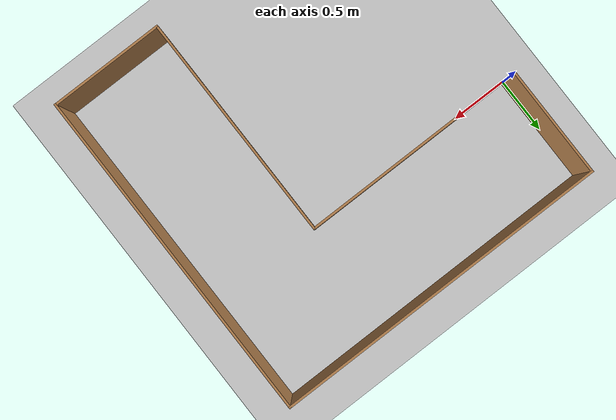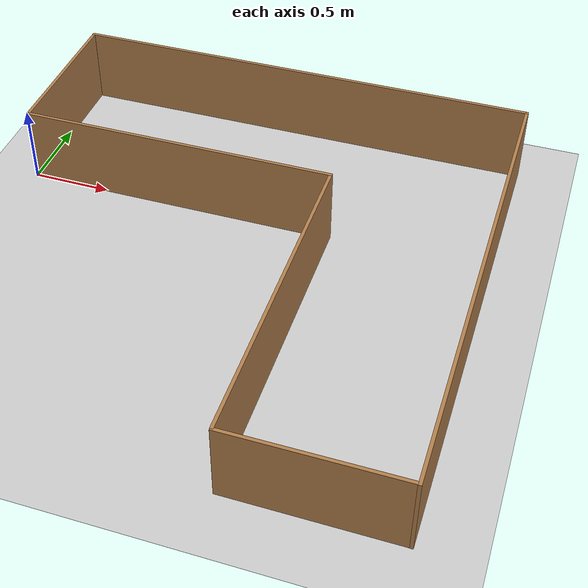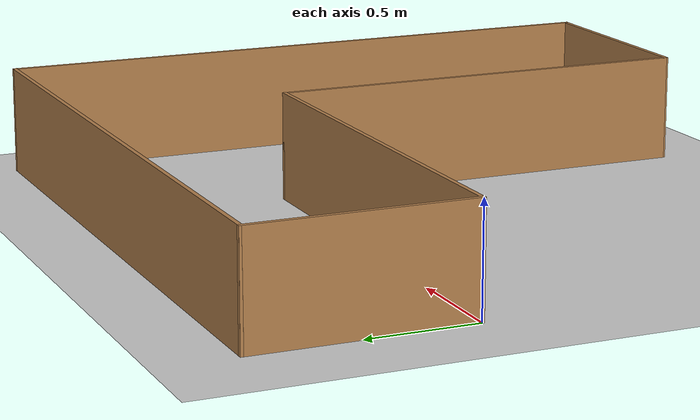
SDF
<sdf version="1.6">
 <world name="default">
  <light name="sun" type="directional">
   <pose>0 0 10 0 -0 0</pose>
   <diffuse>0.8 0.8 0.8 1</diffuse>
   <specular>0.2 0.2 0.2 1</specular>
   <attenuation>
    <range>1000</range>
    <constant>0.9</constant>
    <linear>0.01</linear>
    <quadratic>0.001</quadratic>
   </attenuation>
   <direction>-0.5 0.1 -0.9</direction>
  </light>
  <model name="ground_plane">
   <static>1</static>
   <link name="link">
    <collision name="collision">
     <geometry><plane><normal>0 0 1</normal><size>100 100</size></plane></geometry>
     <surface>
      <contact><collide_bitmask>65535</collide_bitmask></contact>
      <friction><ode><mu>100</mu><mu2>50</mu2></ode></friction>
     </surface>
    </collision>
    <visual name="visual">
     <cast_shadows>0</cast_shadows>
     <geometry><plane><normal>0 0 1</normal><size>100 100</size></plane></geometry>
     <material>
      <script><uri>file://media/materials/scripts/gazebo.material</uri><name>Gazebo/Grey</name></script>
     </material>
    </visual>
   </link>
  </model>
  <gravity>0 0 -9.8</gravity>
  <magnetic_field>6e-06 2.3e-05 -4.2e-05</magnetic_field>
  <atmosphere type="adiabatic"/>
  <physics name="default_physics" default="0" type="ode">
   <max_step_size>0.001</max_step_size>
   <real_time_factor>1</real_time_factor>
   <real_time_update_rate>1000</real_time_update_rate>
  </physics>
  <scene><ambient>0.4 0.4 0.4 1</ambient><background>0.7 0.7 0.7 1</background><shadows>1</shadows></scene>
  <audio><device>default</device></audio>
  <spherical_coordinates>
   <surface_model>EARTH_WGS84</surface_model>
   <latitude_deg>0</latitude_deg>
   <longitude_deg>0</longitude_deg>
   <elevation>0</elevation>
   <heading_deg>0</heading_deg>
  </spherical_coordinates>
  <model name="Motion3">
   <pose>1.49886 -0.508633 0 0 -0 0</pose>
   <link name="Wall_0">
    <collision name="Wall_0_Collision">
     <geometry><box><size>2 0.02 0.5</size></box></geometry>
     <pose>0 0 0.25 0 -0 0</pose>
    </collision>
    <visual name="Wall_0_Visual">
     <pose>0 0 0.25 0 -0 0</pose>
     <geometry><box><size>2 0.02 0.5</size></box></geometry>
     <material>
      <script><uri>file://media/materials/scripts/gazebo.material</uri><name>Gazebo/Wood</name></script>
      <ambient>1 1 1 1</ambient>
     </material>
     <meta><layer>0</layer></meta>
    </visual>
    <pose>-0.500064 0.510326 0 0 -0 0</pose>
   </link>
   <link name="Wall_11">
    <collision name="Wall_11_Collision">
     <geometry><box><size>2.01 0.02 0.5</size></box></geometry>
     <pose>0 0 0.25 0 -0 0</pose>
    </collision>
    <visual name="Wall_11_Visual">
     <pose>0 0 0.25 0 -0 0</pose>
     <geometry><box><size>2.01 0.02 0.5</size></box></geometry>
     <material>
      <script><uri>file://media/materials/scripts/gazebo.material</uri><name>Gazebo/Wood</name></script>
      <ambient>1 1 1 1</ambient>
     </material>
     <meta><layer>0</layer></meta>
    </visual>
    <pose>0.489936 -0.484674 0 0 -0 -1.5708</pose>
   </link>
   <link name="Wall_16">
    <collision name="Wall_16_Collision">
     <geometry><box><size>1 0.02 0.5</size></box></geometry>
     <pose>0 0 0.25 0 -0 0</pose>
    </collision>
    <visual name="Wall_16_Visual">
     <pose>0 0 0.25 0 -0 0</pose>
     <geometry><box><size>1 0.02 0.5</size></box></geometry>
     <material>
      <script><uri>file://media/materials/scripts/gazebo.material</uri><name>Gazebo/Wood</name></script>
      <ambient>1 1 1 1</ambient>
     </material>
     <meta><layer>0</layer></meta>
    </visual>
    <pose>0.981774 -1.48898 0 0 -0 0</pose>
   </link>
   <link name="Wall_2">
    <collision name="Wall_2_Collision">
     <geometry><box><size>1 0.02 0.5</size></box></geometry>
     <pose>0 0 0.25 0 -0 0</pose>
    </collision>
    <visual name="Wall_2_Visual">
     <pose>0 0 0.25 0 -0 0</pose>
     <geometry><box><size>1 0.02 0.5</size></box></geometry>
     <material>
      <script><uri>file://media/materials/scripts/gazebo.material</uri><name>Gazebo/Wood</name></script>
      <ambient>1 1 1 1</ambient>
     </material>
     <meta><layer>0</layer></meta>
    </visual>
    <pose>-1.49 1.00011 0 0 -0 1.57066</pose>
   </link>
   <link name="Wall_4">
    <collision name="Wall_4_Collision">
     <geometry><box><size>3 0.02 0.5</size></box></geometry>
     <pose>0 0 0.25 0 -0 0</pose>
    </collision>
    <visual name="Wall_4_Visual">
     <pose>0 0 0.25 0 -0 0</pose>
     <geometry><box><size>3 0.02 0.5</size></box></geometry>
     <material>
      <script><uri>file://media/materials/scripts/gazebo.material</uri><name>Gazebo/Wood</name></script>
      <ambient>1 1 1 1</ambient>
     </material>
     <meta><layer>0</layer></meta>
    </visual>
    <pose>6.6e-05 1.48989 0 0 -0 0</pose>
   </link>
   <link name="Wall_6">
    <collision name="Wall_6_Collision">
     <geometry><box><size>3 0.02 0.5</size></box></geometry>
     <pose>0 0 0.25 0 -0 0</pose>
    </collision>
    <visual name="Wall_6_Visual">
     <pose>0 0 0.25 0 -0 0</pose>
     <geometry><box><size>3 0.02 0.5</size></box></geometry>
     <material>
      <script><uri>file://media/materials/scripts/gazebo.material</uri><name>Gazebo/Wood</name></script>
      <ambient>1 1 1 1</ambient>
     </material>
     <meta><layer>0</layer></meta>
    </visual>
    <pose>1.49007 -0.000109 0 0 -0 -1.5708</pose>
   </link>
   <static>1</static>
  </model>
 </world>
</sdf>
